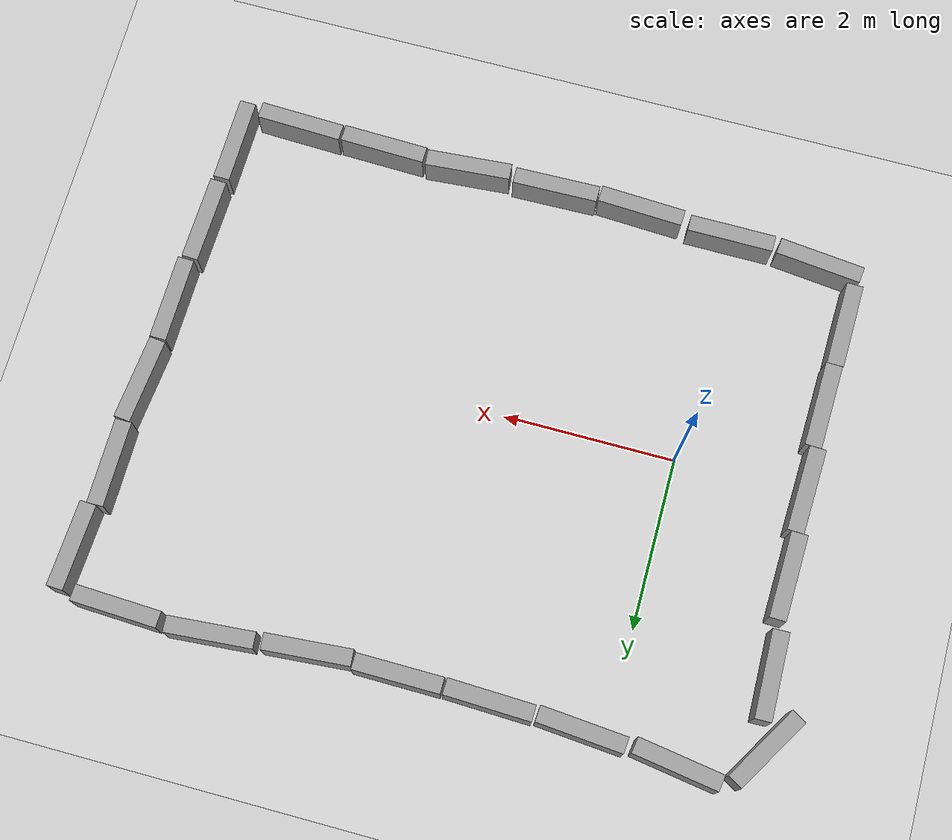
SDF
<sdf version="1.6">
 <world name="default">
  <light name="sun" type="directional">
   <pose>0 0 10 0 -0 0</pose>
   <diffuse>0.8 0.8 0.8 1</diffuse>
   <specular>0.2 0.2 0.2 1</specular>
   <attenuation>
    <range>1000</range>
    <constant>0.9</constant>
    <linear>0.01</linear>
    <quadratic>0.001</quadratic>
   </attenuation>
   <direction>-0.5 0.1 -0.9</direction>
  </light>
  <model name="ground_plane">
   <static>1</static>
   <link name="link">
    <collision name="collision">
     <geometry><plane><normal>0 0 1</normal><size>100 100</size></plane></geometry>
     <surface>
      <contact><collide_bitmask>65535</collide_bitmask></contact>
      <friction><ode><mu>100</mu><mu2>50</mu2></ode></friction>
     </surface>
    </collision>
    <visual name="visual">
     <cast_shadows>0</cast_shadows>
     <geometry><plane><normal>0 0 1</normal><size>100 100</size></plane></geometry>
     <material>
      <script><uri>file://media/materials/scripts/gazebo.material</uri><name>Gazebo/Grey</name></script>
     </material>
    </visual>
   </link>
  </model>
  <gravity>0 0 -9.8</gravity>
  <magnetic_field>6e-06 2.3e-05 -4.2e-05</magnetic_field>
  <atmosphere type="adiabatic"/>
  <physics name="default_physics" default="0" type="ode">
   <max_step_size>0.001</max_step_size>
   <real_time_factor>1</real_time_factor>
   <real_time_update_rate>1000</real_time_update_rate>
  </physics>
  <scene><ambient>0.4 0.4 0.4 1</ambient><background>0.7 0.7 0.7 1</background><shadows>1</shadows></scene>
  <spherical_coordinates>
   <surface_model>EARTH_WGS84</surface_model>
   <latitude_deg>0</latitude_deg>
   <longitude_deg>0</longitude_deg>
   <elevation>0</elevation>
   <heading_deg>0</heading_deg>
  </spherical_coordinates>
  <model name="unit_box_0">
   <link name="link_1">
    <inertial>
     <mass>0.0817798</mass>
     <inertia>
      <ixx>0.0080556</ixx>
      <ixy>0</ixy>
      <ixz>0</ixz>
      <iyy>0.00149444</iyy>
      <iyz>0</iyz>
      <izz>0.00706084</izz>
     </inertia>
    </inertial>
    <pose>0.238272 0.012855 -0 0 -0 0</pose>
    <visual name="visual">
     <geometry><box><size>0.191468 0.999708 0.427349</size></box></geometry>
     <material>
      <lighting>1</lighting>
      <script><uri>file://media/materials/scripts/gazebo.material</uri><name>Gazebo/Grey</name></script>
      <shader type="pixel"/>
     </material>
    </visual>
    <collision name="collision">
     <geometry><box><size>0.191468 0.999708 0.427349</size></box></geometry>
     <surface>
      <friction>
       <ode><mu>1</mu><mu2>1</mu2><fdir1>0 0 0</fdir1><slip1>0</slip1><slip2>0</slip2></ode>
       <torsional>
        <coefficient>1</coefficient>
        <patch_radius>0</patch_radius>
        <surface_radius>0</surface_radius>
        <use_patch_radius>1</use_patch_radius>
        <ode><slip>0</slip></ode>
       </torsional>
      </friction>
      <bounce><restitution_coefficient>0</restitution_coefficient><threshold>1e+06</threshold></bounce>
      <contact>
       <collide_without_contact>0</collide_without_contact>
       <collide_without_contact_bitmask>1</collide_without_contact_bitmask>
       <collide_bitmask>1</collide_bitmask>
       <ode>
        <soft_cfm>0</soft_cfm>
        <soft_erp>0.2</soft_erp>
        <kp>1e+13</kp>
        <kd>1</kd>
        <max_vel>0.01</max_vel>
        <min_depth>0</min_depth>
       </ode>
       <bullet>
        <split_impulse>1</split_impulse>
        <split_impulse_penetration_threshold>-0.01</split_impulse_penetration_threshold>
        <soft_cfm>0</soft_cfm>
        <soft_erp>0.2</soft_erp>
        <kp>1e+13</kp>
        <kd>1</kd>
       </bullet>
      </contact>
     </surface>
    </collision>
   </link>
   <static>0</static>
   <pose>-1.7108 0.045646 0.213673 -0 -5e-06 -0.04199</pose>
  </model>
  <model name="unit_box_1">
   <link name="link_1">
    <inertial>
     <mass>0.0817798</mass>
     <inertia>
      <ixx>0.0080556</ixx>
      <ixy>0</ixy>
      <ixz>0</ixz>
      <iyy>0.00149444</iyy>
      <iyz>0</iyz>
      <izz>0.00706084</izz>
     </inertia>
    </inertial>
    <pose>0.238272 0.012855 -0 0 -0 0</pose>
    <visual name="visual">
     <geometry><box><size>0.191468 0.999708 0.427349</size></box></geometry>
     <material>
      <lighting>1</lighting>
      <script><uri>file://media/materials/scripts/gazebo.material</uri><name>Gazebo/Grey</name></script>
      <shader type="pixel"/>
     </material>
    </visual>
    <collision name="collision">
     <geometry><box><size>0.191468 0.999708 0.427349</size></box></geometry>
     <surface>
      <friction>
       <ode><mu>1</mu><mu2>1</mu2><fdir1>0 0 0</fdir1><slip1>0</slip1><slip2>0</slip2></ode>
       <torsional>
        <coefficient>1</coefficient>
        <patch_radius>0</patch_radius>
        <surface_radius>0</surface_radius>
        <use_patch_radius>1</use_patch_radius>
        <ode><slip>0</slip></ode>
       </torsional>
      </friction>
      <bounce><restitution_coefficient>0</restitution_coefficient><threshold>1e+06</threshold></bounce>
      <contact>
       <collide_without_contact>0</collide_without_contact>
       <collide_without_contact_bitmask>1</collide_without_contact_bitmask>
       <collide_bitmask>1</collide_bitmask>
       <ode>
        <soft_cfm>0</soft_cfm>
        <soft_erp>0.2</soft_erp>
        <kp>1e+13</kp>
        <kd>1</kd>
        <max_vel>0.01</max_vel>
        <min_depth>0</min_depth>
       </ode>
       <bullet>
        <split_impulse>1</split_impulse>
        <split_impulse_penetration_threshold>-0.01</split_impulse_penetration_threshold>
        <soft_cfm>0</soft_cfm>
        <soft_erp>0.2</soft_erp>
        <kp>1e+13</kp>
        <kd>1</kd>
       </bullet>
      </contact>
     </surface>
    </collision>
   </link>
   <static>0</static>
   <pose>-1.72328 1.04488 0.213676 -0 7e-06 -0.031677</pose>
  </model>
  <model name="unit_box">
   <link name="link_1">
    <inertial>
     <mass>0.0817798</mass>
     <inertia>
      <ixx>0.0080556</ixx>
      <ixy>0</ixy>
      <ixz>0</ixz>
      <iyy>0.00149444</iyy>
      <iyz>0</iyz>
      <izz>0.00706084</izz>
     </inertia>
    </inertial>
    <pose>0.238272 0.012855 -0 0 -0 0</pose>
    <visual name="visual">
     <geometry><box><size>0.191468 0.999708 0.427349</size></box></geometry>
     <material>
      <lighting>1</lighting>
      <script><uri>file://media/materials/scripts/gazebo.material</uri><name>Gazebo/Grey</name></script>
      <shader type="pixel"/>
     </material>
    </visual>
    <collision name="collision">
     <geometry><box><size>0.191468 0.999708 0.427349</size></box></geometry>
     <surface>
      <friction>
       <ode><mu>1</mu><mu2>1</mu2><fdir1>0 0 0</fdir1><slip1>0</slip1><slip2>0</slip2></ode>
       <torsional>
        <coefficient>1</coefficient>
        <patch_radius>0</patch_radius>
        <surface_radius>0</surface_radius>
        <use_patch_radius>1</use_patch_radius>
        <ode><slip>0</slip></ode>
       </torsional>
      </friction>
      <bounce><restitution_coefficient>0</restitution_coefficient><threshold>1e+06</threshold></bounce>
      <contact>
       <collide_without_contact>0</collide_without_contact>
       <collide_without_contact_bitmask>1</collide_without_contact_bitmask>
       <collide_bitmask>1</collide_bitmask>
       <ode>
        <soft_cfm>0</soft_cfm>
        <soft_erp>0.2</soft_erp>
        <kp>1e+13</kp>
        <kd>1</kd>
        <max_vel>0.01</max_vel>
        <min_depth>0</min_depth>
       </ode>
       <bullet>
        <split_impulse>1</split_impulse>
        <split_impulse_penetration_threshold>-0.01</split_impulse_penetration_threshold>
        <soft_cfm>0</soft_cfm>
        <soft_erp>0.2</soft_erp>
        <kp>1e+13</kp>
        <kd>1</kd>
       </bullet>
      </contact>
     </surface>
    </collision>
   </link>
   <static>0</static>
   <pose>-1.69054 -0.958756 0.213675 0 5e-06 -0.031552</pose>
  </model>
  <model name="unit_box_2">
   <link name="link_1">
    <inertial>
     <mass>0.0817798</mass>
     <inertia>
      <ixx>0.0080556</ixx>
      <ixy>0</ixy>
      <ixz>0</ixz>
      <iyy>0.00149444</iyy>
      <iyz>0</iyz>
      <izz>0.00706084</izz>
     </inertia>
    </inertial>
    <pose>0.238272 0.012855 -0 0 -0 0</pose>
    <visual name="visual">
     <geometry><box><size>0.191468 0.999708 0.427349</size></box></geometry>
     <material>
      <lighting>1</lighting>
      <script><uri>file://media/materials/scripts/gazebo.material</uri><name>Gazebo/Grey</name></script>
      <shader type="pixel"/>
     </material>
    </visual>
    <collision name="collision">
     <geometry><box><size>0.191468 0.999708 0.427349</size></box></geometry>
     <surface>
      <friction>
       <ode><mu>1</mu><mu2>1</mu2><fdir1>0 0 0</fdir1><slip1>0</slip1><slip2>0</slip2></ode>
       <torsional>
        <coefficient>1</coefficient>
        <patch_radius>0</patch_radius>
        <surface_radius>0</surface_radius>
        <use_patch_radius>1</use_patch_radius>
        <ode><slip>0</slip></ode>
       </torsional>
      </friction>
      <bounce><restitution_coefficient>0</restitution_coefficient><threshold>1e+06</threshold></bounce>
      <contact>
       <collide_without_contact>0</collide_without_contact>
       <collide_without_contact_bitmask>1</collide_without_contact_bitmask>
       <collide_bitmask>1</collide_bitmask>
       <ode>
        <soft_cfm>0</soft_cfm>
        <soft_erp>0.2</soft_erp>
        <kp>1e+13</kp>
        <kd>1</kd>
        <max_vel>0.01</max_vel>
        <min_depth>0</min_depth>
       </ode>
       <bullet>
        <split_impulse>1</split_impulse>
        <split_impulse_penetration_threshold>-0.01</split_impulse_penetration_threshold>
        <soft_cfm>0</soft_cfm>
        <soft_erp>0.2</soft_erp>
        <kp>1e+13</kp>
        <kd>1</kd>
       </bullet>
      </contact>
     </surface>
    </collision>
   </link>
   <static>0</static>
   <pose>-1.72757 -1.96004 0.213675 0 5e-06 -0.025123</pose>
  </model>
  <model name="unit_box_3">
   <link name="link_1">
    <inertial>
     <mass>0.0817798</mass>
     <inertia>
      <ixx>0.0080556</ixx>
      <ixy>0</ixy>
      <ixz>0</ixz>
      <iyy>0.00149444</iyy>
      <iyz>0</iyz>
      <izz>0.00706084</izz>
     </inertia>
    </inertial>
    <pose>0.238272 0.012855 -0 0 -0 0</pose>
    <visual name="visual">
     <geometry><box><size>0.191468 0.999708 0.427349</size></box></geometry>
     <material>
      <lighting>1</lighting>
      <script><uri>file://media/materials/scripts/gazebo.material</uri><name>Gazebo/Grey</name></script>
      <shader type="pixel"/>
     </material>
    </visual>
    <collision name="collision">
     <geometry><box><size>0.191468 0.999708 0.427349</size></box></geometry>
     <surface>
      <friction>
       <ode><mu>1</mu><mu2>1</mu2><fdir1>0 0 0</fdir1><slip1>0</slip1><slip2>0</slip2></ode>
       <torsional>
        <coefficient>1</coefficient>
        <patch_radius>0</patch_radius>
        <surface_radius>0</surface_radius>
        <use_patch_radius>1</use_patch_radius>
        <ode><slip>0</slip></ode>
       </torsional>
      </friction>
      <bounce><restitution_coefficient>0</restitution_coefficient><threshold>1e+06</threshold></bounce>
      <contact>
       <collide_without_contact>0</collide_without_contact>
       <collide_without_contact_bitmask>1</collide_without_contact_bitmask>
       <collide_bitmask>1</collide_bitmask>
       <ode>
        <soft_cfm>0</soft_cfm>
        <soft_erp>0.2</soft_erp>
        <kp>1e+13</kp>
        <kd>1</kd>
        <max_vel>0.01</max_vel>
        <min_depth>0</min_depth>
       </ode>
       <bullet>
        <split_impulse>1</split_impulse>
        <split_impulse_penetration_threshold>-0.01</split_impulse_penetration_threshold>
        <soft_cfm>0</soft_cfm>
        <soft_erp>0.2</soft_erp>
        <kp>1e+13</kp>
        <kd>1</kd>
       </bullet>
      </contact>
     </surface>
    </collision>
   </link>
   <static>0</static>
   <pose>-1.04222 -2.40342 0.213673 0 -5e-06 -1.68005</pose>
  </model>
  <model name="unit_box_4">
   <link name="link_1">
    <inertial>
     <mass>0.0817798</mass>
     <inertia>
      <ixx>0.0080556</ixx>
      <ixy>0</ixy>
      <ixz>0</ixz>
      <iyy>0.00149444</iyy>
      <iyz>0</iyz>
      <izz>0.00706084</izz>
     </inertia>
    </inertial>
    <pose>0.238272 0.012855 -0 0 -0 0</pose>
    <visual name="visual">
     <geometry><box><size>0.191468 0.999708 0.427349</size></box></geometry>
     <material>
      <lighting>1</lighting>
      <script><uri>file://media/materials/scripts/gazebo.material</uri><name>Gazebo/Grey</name></script>
      <shader type="pixel"/>
     </material>
    </visual>
    <collision name="collision">
     <geometry><box><size>0.191468 0.999708 0.427349</size></box></geometry>
     <surface>
      <friction>
       <ode><mu>1</mu><mu2>1</mu2><fdir1>0 0 0</fdir1><slip1>0</slip1><slip2>0</slip2></ode>
       <torsional>
        <coefficient>1</coefficient>
        <patch_radius>0</patch_radius>
        <surface_radius>0</surface_radius>
        <use_patch_radius>1</use_patch_radius>
        <ode><slip>0</slip></ode>
       </torsional>
      </friction>
      <bounce><restitution_coefficient>0</restitution_coefficient><threshold>1e+06</threshold></bounce>
      <contact>
       <collide_without_contact>0</collide_without_contact>
       <collide_without_contact_bitmask>1</collide_without_contact_bitmask>
       <collide_bitmask>1</collide_bitmask>
       <ode>
        <soft_cfm>0</soft_cfm>
        <soft_erp>0.2</soft_erp>
        <kp>1e+13</kp>
        <kd>1</kd>
        <max_vel>0.01</max_vel>
        <min_depth>0</min_depth>
       </ode>
       <bullet>
        <split_impulse>1</split_impulse>
        <split_impulse_penetration_threshold>-0.01</split_impulse_penetration_threshold>
        <soft_cfm>0</soft_cfm>
        <soft_erp>0.2</soft_erp>
        <kp>1e+13</kp>
        <kd>1</kd>
       </bullet>
      </contact>
     </surface>
    </collision>
   </link>
   <static>0</static>
   <pose>-0.008669 -2.46592 0.213675 0 5e-06 -1.57501</pose>
  </model>
  <model name="unit_box_5">
   <link name="link_1">
    <inertial>
     <mass>0.0817798</mass>
     <inertia>
      <ixx>0.0080556</ixx>
      <ixy>0</ixy>
      <ixz>0</ixz>
      <iyy>0.00149444</iyy>
      <iyz>0</iyz>
      <izz>0.00706084</izz>
     </inertia>
    </inertial>
    <pose>0.238272 0.012855 -0 0 -0 0</pose>
    <visual name="visual">
     <geometry><box><size>0.191468 0.999708 0.427349</size></box></geometry>
     <material>
      <lighting>1</lighting>
      <script><uri>file://media/materials/scripts/gazebo.material</uri><name>Gazebo/Grey</name></script>
      <shader type="pixel"/>
     </material>
    </visual>
    <collision name="collision">
     <geometry><box><size>0.191468 0.999708 0.427349</size></box></geometry>
     <surface>
      <friction>
       <ode><mu>1</mu><mu2>1</mu2><fdir1>0 0 0</fdir1><slip1>0</slip1><slip2>0</slip2></ode>
       <torsional>
        <coefficient>1</coefficient>
        <patch_radius>0</patch_radius>
        <surface_radius>0</surface_radius>
        <use_patch_radius>1</use_patch_radius>
        <ode><slip>0</slip></ode>
       </torsional>
      </friction>
      <bounce><restitution_coefficient>0</restitution_coefficient><threshold>1e+06</threshold></bounce>
      <contact>
       <collide_without_contact>0</collide_without_contact>
       <collide_without_contact_bitmask>1</collide_without_contact_bitmask>
       <collide_bitmask>1</collide_bitmask>
       <ode>
        <soft_cfm>0</soft_cfm>
        <soft_erp>0.2</soft_erp>
        <kp>1e+13</kp>
        <kd>1</kd>
        <max_vel>0.01</max_vel>
        <min_depth>0</min_depth>
       </ode>
       <bullet>
        <split_impulse>1</split_impulse>
        <split_impulse_penetration_threshold>-0.01</split_impulse_penetration_threshold>
        <soft_cfm>0</soft_cfm>
        <soft_erp>0.2</soft_erp>
        <kp>1e+13</kp>
        <kd>1</kd>
       </bullet>
      </contact>
     </surface>
    </collision>
   </link>
   <static>0</static>
   <pose>1.08682 -2.52686 0.213675 0 5e-06 -1.6228</pose>
  </model>
  <model name="unit_box_6">
   <link name="link_1">
    <inertial>
     <mass>0.0817798</mass>
     <inertia>
      <ixx>0.0080556</ixx>
      <ixy>0</ixy>
      <ixz>0</ixz>
      <iyy>0.00149444</iyy>
      <iyz>0</iyz>
      <izz>0.00706084</izz>
     </inertia>
    </inertial>
    <pose>0.238272 0.012855 -0 0 -0 0</pose>
    <visual name="visual">
     <geometry><box><size>0.191468 0.999708 0.427349</size></box></geometry>
     <material>
      <lighting>1</lighting>
      <script><uri>file://media/materials/scripts/gazebo.material</uri><name>Gazebo/Grey</name></script>
      <shader type="pixel"/>
     </material>
    </visual>
    <collision name="collision">
     <geometry><box><size>0.191468 0.999708 0.427349</size></box></geometry>
     <surface>
      <friction>
       <ode><mu>1</mu><mu2>1</mu2><fdir1>0 0 0</fdir1><slip1>0</slip1><slip2>0</slip2></ode>
       <torsional>
        <coefficient>1</coefficient>
        <patch_radius>0</patch_radius>
        <surface_radius>0</surface_radius>
        <use_patch_radius>1</use_patch_radius>
        <ode><slip>0</slip></ode>
       </torsional>
      </friction>
      <bounce><restitution_coefficient>0</restitution_coefficient><threshold>1e+06</threshold></bounce>
      <contact>
       <collide_without_contact>0</collide_without_contact>
       <collide_without_contact_bitmask>1</collide_without_contact_bitmask>
       <collide_bitmask>1</collide_bitmask>
       <ode>
        <soft_cfm>0</soft_cfm>
        <soft_erp>0.2</soft_erp>
        <kp>1e+13</kp>
        <kd>1</kd>
        <max_vel>0.01</max_vel>
        <min_depth>0</min_depth>
       </ode>
       <bullet>
        <split_impulse>1</split_impulse>
        <split_impulse_penetration_threshold>-0.01</split_impulse_penetration_threshold>
        <soft_cfm>0</soft_cfm>
        <soft_erp>0.2</soft_erp>
        <kp>1e+13</kp>
        <kd>1</kd>
       </bullet>
      </contact>
     </surface>
    </collision>
   </link>
   <static>0</static>
   <pose>2.0913 -2.52566 0.213675 0 5e-06 -1.55293</pose>
  </model>
  <model name="unit_box_7">
   <link name="link_1">
    <inertial>
     <mass>0.0817798</mass>
     <inertia>
      <ixx>0.0080556</ixx>
      <ixy>0</ixy>
      <ixz>0</ixz>
      <iyy>0.00149444</iyy>
      <iyz>0</iyz>
      <izz>0.00706084</izz>
     </inertia>
    </inertial>
    <pose>0.238272 0.012855 -0 0 -0 0</pose>
    <visual name="visual">
     <geometry><box><size>0.191468 0.999708 0.427349</size></box></geometry>
     <material>
      <lighting>1</lighting>
      <script><uri>file://media/materials/scripts/gazebo.material</uri><name>Gazebo/Grey</name></script>
      <shader type="pixel"/>
     </material>
    </visual>
    <collision name="collision">
     <geometry><box><size>0.191468 0.999708 0.427349</size></box></geometry>
     <surface>
      <friction>
       <ode><mu>1</mu><mu2>1</mu2><fdir1>0 0 0</fdir1><slip1>0</slip1><slip2>0</slip2></ode>
       <torsional>
        <coefficient>1</coefficient>
        <patch_radius>0</patch_radius>
        <surface_radius>0</surface_radius>
        <use_patch_radius>1</use_patch_radius>
        <ode><slip>0</slip></ode>
       </torsional>
      </friction>
      <bounce><restitution_coefficient>0</restitution_coefficient><threshold>1e+06</threshold></bounce>
      <contact>
       <collide_without_contact>0</collide_without_contact>
       <collide_without_contact_bitmask>1</collide_without_contact_bitmask>
       <collide_bitmask>1</collide_bitmask>
       <ode>
        <soft_cfm>0</soft_cfm>
        <soft_erp>0.2</soft_erp>
        <kp>1e+13</kp>
        <kd>1</kd>
        <max_vel>0.01</max_vel>
        <min_depth>0</min_depth>
       </ode>
       <bullet>
        <split_impulse>1</split_impulse>
        <split_impulse_penetration_threshold>-0.01</split_impulse_penetration_threshold>
        <soft_cfm>0</soft_cfm>
        <soft_erp>0.2</soft_erp>
        <kp>1e+13</kp>
        <kd>1</kd>
       </bullet>
      </contact>
     </surface>
    </collision>
   </link>
   <static>0</static>
   <pose>3.13169 -2.50582 0.213675 -0 5e-06 -1.49643</pose>
  </model>
  <model name="unit_box_8">
   <link name="link_1">
    <inertial>
     <mass>0.0817798</mass>
     <inertia>
      <ixx>0.0080556</ixx>
      <ixy>0</ixy>
      <ixz>0</ixz>
      <iyy>0.00149444</iyy>
      <iyz>0</iyz>
      <izz>0.00706084</izz>
     </inertia>
    </inertial>
    <pose>0.238272 0.012855 -0 0 -0 0</pose>
    <visual name="visual">
     <geometry><box><size>0.191468 0.999708 0.427349</size></box></geometry>
     <material>
      <lighting>1</lighting>
      <script><uri>file://media/materials/scripts/gazebo.material</uri><name>Gazebo/Grey</name></script>
      <shader type="pixel"/>
     </material>
    </visual>
    <collision name="collision">
     <geometry><box><size>0.191468 0.999708 0.427349</size></box></geometry>
     <surface>
      <friction>
       <ode><mu>1</mu><mu2>1</mu2><fdir1>0 0 0</fdir1><slip1>0</slip1><slip2>0</slip2></ode>
       <torsional>
        <coefficient>1</coefficient>
        <patch_radius>0</patch_radius>
        <surface_radius>0</surface_radius>
        <use_patch_radius>1</use_patch_radius>
        <ode><slip>0</slip></ode>
       </torsional>
      </friction>
      <bounce><restitution_coefficient>0</restitution_coefficient><threshold>1e+06</threshold></bounce>
      <contact>
       <collide_without_contact>0</collide_without_contact>
       <collide_without_contact_bitmask>1</collide_without_contact_bitmask>
       <collide_bitmask>1</collide_bitmask>
       <ode>
        <soft_cfm>0</soft_cfm>
        <soft_erp>0.2</soft_erp>
        <kp>1e+13</kp>
        <kd>1</kd>
        <max_vel>0.01</max_vel>
        <min_depth>0</min_depth>
       </ode>
       <bullet>
        <split_impulse>1</split_impulse>
        <split_impulse_penetration_threshold>-0.01</split_impulse_penetration_threshold>
        <soft_cfm>0</soft_cfm>
        <soft_erp>0.2</soft_erp>
        <kp>1e+13</kp>
        <kd>1</kd>
       </bullet>
      </contact>
     </surface>
    </collision>
   </link>
   <static>0</static>
   <pose>4.18153 -2.49769 0.213675 0 5e-06 -1.59965</pose>
  </model>
  <model name="unit_box_9">
   <link name="link_1">
    <inertial>
     <mass>0.0817798</mass>
     <inertia>
      <ixx>0.0080556</ixx>
      <ixy>0</ixy>
      <ixz>0</ixz>
      <iyy>0.00149444</iyy>
      <iyz>0</iyz>
      <izz>0.00706084</izz>
     </inertia>
    </inertial>
    <pose>0.238272 0.012855 -0 0 -0 0</pose>
    <visual name="visual">
     <geometry><box><size>0.191468 0.999708 0.427349</size></box></geometry>
     <material>
      <lighting>1</lighting>
      <script><uri>file://media/materials/scripts/gazebo.material</uri><name>Gazebo/Grey</name></script>
      <shader type="pixel"/>
     </material>
    </visual>
    <collision name="collision">
     <geometry><box><size>0.191468 0.999708 0.427349</size></box></geometry>
     <surface>
      <friction>
       <ode><mu>1</mu><mu2>1</mu2><fdir1>0 0 0</fdir1><slip1>0</slip1><slip2>0</slip2></ode>
       <torsional>
        <coefficient>1</coefficient>
        <patch_radius>0</patch_radius>
        <surface_radius>0</surface_radius>
        <use_patch_radius>1</use_patch_radius>
        <ode><slip>0</slip></ode>
       </torsional>
      </friction>
      <bounce><restitution_coefficient>0</restitution_coefficient><threshold>1e+06</threshold></bounce>
      <contact>
       <collide_without_contact>0</collide_without_contact>
       <collide_without_contact_bitmask>1</collide_without_contact_bitmask>
       <collide_bitmask>1</collide_bitmask>
       <ode>
        <soft_cfm>0</soft_cfm>
        <soft_erp>0.2</soft_erp>
        <kp>1e+13</kp>
        <kd>1</kd>
        <max_vel>0.01</max_vel>
        <min_depth>0</min_depth>
       </ode>
       <bullet>
        <split_impulse>1</split_impulse>
        <split_impulse_penetration_threshold>-0.01</split_impulse_penetration_threshold>
        <soft_cfm>0</soft_cfm>
        <soft_erp>0.2</soft_erp>
        <kp>1e+13</kp>
        <kd>1</kd>
       </bullet>
      </contact>
     </surface>
    </collision>
   </link>
   <static>0</static>
   <pose>-1.78064 2.13619 0.213676 0 7e-06 0.016766</pose>
  </model>
  <model name="unit_box_10">
   <link name="link_1">
    <inertial>
     <mass>0.0817798</mass>
     <inertia>
      <ixx>0.0080556</ixx>
      <ixy>0</ixy>
      <ixz>0</ixz>
      <iyy>0.00149444</iyy>
      <iyz>0</iyz>
      <izz>0.00706084</izz>
     </inertia>
    </inertial>
    <pose>0.238272 0.012855 -0 0 -0 0</pose>
    <visual name="visual">
     <geometry><box><size>0.191468 0.999708 0.427349</size></box></geometry>
     <material>
      <lighting>1</lighting>
      <script><uri>file://media/materials/scripts/gazebo.material</uri><name>Gazebo/Grey</name></script>
      <shader type="pixel"/>
     </material>
    </visual>
    <collision name="collision">
     <geometry><box><size>0.191468 0.999708 0.427349</size></box></geometry>
     <surface>
      <friction>
       <ode><mu>1</mu><mu2>1</mu2><fdir1>0 0 0</fdir1><slip1>0</slip1><slip2>0</slip2></ode>
       <torsional>
        <coefficient>1</coefficient>
        <patch_radius>0</patch_radius>
        <surface_radius>0</surface_radius>
        <use_patch_radius>1</use_patch_radius>
        <ode><slip>0</slip></ode>
       </torsional>
      </friction>
      <bounce><restitution_coefficient>0</restitution_coefficient><threshold>1e+06</threshold></bounce>
      <contact>
       <collide_without_contact>0</collide_without_contact>
       <collide_without_contact_bitmask>1</collide_without_contact_bitmask>
       <collide_bitmask>1</collide_bitmask>
       <ode>
        <soft_cfm>0</soft_cfm>
        <soft_erp>0.2</soft_erp>
        <kp>1e+13</kp>
        <kd>1</kd>
        <max_vel>0.01</max_vel>
        <min_depth>0</min_depth>
       </ode>
       <bullet>
        <split_impulse>1</split_impulse>
        <split_impulse_penetration_threshold>-0.01</split_impulse_penetration_threshold>
        <soft_cfm>0</soft_cfm>
        <soft_erp>0.2</soft_erp>
        <kp>1e+13</kp>
        <kd>1</kd>
       </bullet>
      </contact>
     </surface>
    </collision>
   </link>
   <static>0</static>
   <pose>5.20908 -2.52241 0.213675 0 5e-06 -1.60769</pose>
  </model>
  <model name="unit_box_11">
   <link name="link_1">
    <inertial>
     <mass>0.0817798</mass>
     <inertia>
      <ixx>0.0080556</ixx>
      <ixy>0</ixy>
      <ixz>0</ixz>
      <iyy>0.00149444</iyy>
      <iyz>0</iyz>
      <izz>0.00706084</izz>
     </inertia>
    </inertial>
    <pose>0.238272 0.012855 -0 0 -0 0</pose>
    <visual name="visual">
     <geometry><box><size>0.191468 0.999708 0.427349</size></box></geometry>
     <material>
      <lighting>1</lighting>
      <script><uri>file://media/materials/scripts/gazebo.material</uri><name>Gazebo/Grey</name></script>
      <shader type="pixel"/>
     </material>
    </visual>
    <collision name="collision">
     <geometry><box><size>0.191468 0.999708 0.427349</size></box></geometry>
     <surface>
      <friction>
       <ode><mu>1</mu><mu2>1</mu2><fdir1>0 0 0</fdir1><slip1>0</slip1><slip2>0</slip2></ode>
       <torsional>
        <coefficient>1</coefficient>
        <patch_radius>0</patch_radius>
        <surface_radius>0</surface_radius>
        <use_patch_radius>1</use_patch_radius>
        <ode><slip>0</slip></ode>
       </torsional>
      </friction>
      <bounce><restitution_coefficient>0</restitution_coefficient><threshold>1e+06</threshold></bounce>
      <contact>
       <collide_without_contact>0</collide_without_contact>
       <collide_without_contact_bitmask>1</collide_without_contact_bitmask>
       <collide_bitmask>1</collide_bitmask>
       <ode>
        <soft_cfm>0</soft_cfm>
        <soft_erp>0.2</soft_erp>
        <kp>1e+13</kp>
        <kd>1</kd>
        <max_vel>0.01</max_vel>
        <min_depth>0</min_depth>
       </ode>
       <bullet>
        <split_impulse>1</split_impulse>
        <split_impulse_penetration_threshold>-0.01</split_impulse_penetration_threshold>
        <soft_cfm>0</soft_cfm>
        <soft_erp>0.2</soft_erp>
        <kp>1e+13</kp>
        <kd>1</kd>
       </bullet>
      </contact>
     </surface>
    </collision>
   </link>
   <static>0</static>
   <pose>5.65173 -2.3336 0.213675 0 5e-06 -0.020599</pose>
  </model>
  <model name="unit_box_12">
   <link name="link_1">
    <inertial>
     <mass>0.0817798</mass>
     <inertia>
      <ixx>0.0080556</ixx>
      <ixy>0</ixy>
      <ixz>0</ixz>
      <iyy>0.00149444</iyy>
      <iyz>0</iyz>
      <izz>0.00706084</izz>
     </inertia>
    </inertial>
    <pose>0.238272 0.012855 -0 0 -0 0</pose>
    <visual name="visual">
     <geometry><box><size>0.191468 0.999708 0.427349</size></box></geometry>
     <material>
      <lighting>1</lighting>
      <script><uri>file://media/materials/scripts/gazebo.material</uri><name>Gazebo/Grey</name></script>
      <shader type="pixel"/>
     </material>
    </visual>
    <collision name="collision">
     <geometry><box><size>0.191468 0.999708 0.427349</size></box></geometry>
     <surface>
      <friction>
       <ode><mu>1</mu><mu2>1</mu2><fdir1>0 0 0</fdir1><slip1>0</slip1><slip2>0</slip2></ode>
       <torsional>
        <coefficient>1</coefficient>
        <patch_radius>0</patch_radius>
        <surface_radius>0</surface_radius>
        <use_patch_radius>1</use_patch_radius>
        <ode><slip>0</slip></ode>
       </torsional>
      </friction>
      <bounce><restitution_coefficient>0</restitution_coefficient><threshold>1e+06</threshold></bounce>
      <contact>
       <collide_without_contact>0</collide_without_contact>
       <collide_without_contact_bitmask>1</collide_without_contact_bitmask>
       <collide_bitmask>1</collide_bitmask>
       <ode>
        <soft_cfm>0</soft_cfm>
        <soft_erp>0.2</soft_erp>
        <kp>1e+13</kp>
        <kd>1</kd>
        <max_vel>0.01</max_vel>
        <min_depth>0</min_depth>
       </ode>
       <bullet>
        <split_impulse>1</split_impulse>
        <split_impulse_penetration_threshold>-0.01</split_impulse_penetration_threshold>
        <soft_cfm>0</soft_cfm>
        <soft_erp>0.2</soft_erp>
        <kp>1e+13</kp>
        <kd>1</kd>
       </bullet>
      </contact>
     </surface>
    </collision>
   </link>
   <static>0</static>
   <pose>5.69991 -1.28622 0.213675 0 5e-06 -0.037146</pose>
  </model>
  <model name="unit_box_13">
   <link name="link_1">
    <inertial>
     <mass>0.0817798</mass>
     <inertia>
      <ixx>0.0080556</ixx>
      <ixy>0</ixy>
      <ixz>0</ixz>
      <iyy>0.00149444</iyy>
      <iyz>0</iyz>
      <izz>0.00706084</izz>
     </inertia>
    </inertial>
    <pose>0.238272 0.012855 -0 0 -0 0</pose>
    <visual name="visual">
     <geometry><box><size>0.191468 0.999708 0.427349</size></box></geometry>
     <material>
      <lighting>1</lighting>
      <script><uri>file://media/materials/scripts/gazebo.material</uri><name>Gazebo/Grey</name></script>
      <shader type="pixel"/>
     </material>
    </visual>
    <collision name="collision">
     <geometry><box><size>0.191468 0.999708 0.427349</size></box></geometry>
     <surface>
      <friction>
       <ode><mu>1</mu><mu2>1</mu2><fdir1>0 0 0</fdir1><slip1>0</slip1><slip2>0</slip2></ode>
       <torsional>
        <coefficient>1</coefficient>
        <patch_radius>0</patch_radius>
        <surface_radius>0</surface_radius>
        <use_patch_radius>1</use_patch_radius>
        <ode><slip>0</slip></ode>
       </torsional>
      </friction>
      <bounce><restitution_coefficient>0</restitution_coefficient><threshold>1e+06</threshold></bounce>
      <contact>
       <collide_without_contact>0</collide_without_contact>
       <collide_without_contact_bitmask>1</collide_without_contact_bitmask>
       <collide_bitmask>1</collide_bitmask>
       <ode>
        <soft_cfm>0</soft_cfm>
        <soft_erp>0.2</soft_erp>
        <kp>1e+13</kp>
        <kd>1</kd>
        <max_vel>0.01</max_vel>
        <min_depth>0</min_depth>
       </ode>
       <bullet>
        <split_impulse>1</split_impulse>
        <split_impulse_penetration_threshold>-0.01</split_impulse_penetration_threshold>
        <soft_cfm>0</soft_cfm>
        <soft_erp>0.2</soft_erp>
        <kp>1e+13</kp>
        <kd>1</kd>
       </bullet>
      </contact>
     </surface>
    </collision>
   </link>
   <static>0</static>
   <pose>5.76366 -0.266211 0.213675 0 5e-06 -0.020304</pose>
  </model>
  <model name="unit_box_14">
   <link name="link_1">
    <inertial>
     <mass>0.0817798</mass>
     <inertia>
      <ixx>0.0080556</ixx>
      <ixy>0</ixy>
      <ixz>0</ixz>
      <iyy>0.00149444</iyy>
      <iyz>0</iyz>
      <izz>0.00706084</izz>
     </inertia>
    </inertial>
    <pose>0.238272 0.012855 -0 0 -0 0</pose>
    <visual name="visual">
     <geometry><box><size>0.191468 0.999708 0.427349</size></box></geometry>
     <material>
      <lighting>1</lighting>
      <script><uri>file://media/materials/scripts/gazebo.material</uri><name>Gazebo/Grey</name></script>
      <shader type="pixel"/>
     </material>
    </visual>
    <collision name="collision">
     <geometry><box><size>0.191468 0.999708 0.427349</size></box></geometry>
     <surface>
      <friction>
       <ode><mu>1</mu><mu2>1</mu2><fdir1>0 0 0</fdir1><slip1>0</slip1><slip2>0</slip2></ode>
       <torsional>
        <coefficient>1</coefficient>
        <patch_radius>0</patch_radius>
        <surface_radius>0</surface_radius>
        <use_patch_radius>1</use_patch_radius>
        <ode><slip>0</slip></ode>
       </torsional>
      </friction>
      <bounce><restitution_coefficient>0</restitution_coefficient><threshold>1e+06</threshold></bounce>
      <contact>
       <collide_without_contact>0</collide_without_contact>
       <collide_without_contact_bitmask>1</collide_without_contact_bitmask>
       <collide_bitmask>1</collide_bitmask>
       <ode>
        <soft_cfm>0</soft_cfm>
        <soft_erp>0.2</soft_erp>
        <kp>1e+13</kp>
        <kd>1</kd>
        <max_vel>0.01</max_vel>
        <min_depth>0</min_depth>
       </ode>
       <bullet>
        <split_impulse>1</split_impulse>
        <split_impulse_penetration_threshold>-0.01</split_impulse_penetration_threshold>
        <soft_cfm>0</soft_cfm>
        <soft_erp>0.2</soft_erp>
        <kp>1e+13</kp>
        <kd>1</kd>
       </bullet>
      </contact>
     </surface>
    </collision>
   </link>
   <static>0</static>
   <pose>5.81944 0.767567 0.213673 0 -5e-06 -0.103355</pose>
  </model>
  <model name="unit_box_15">
   <link name="link_1">
    <inertial>
     <mass>0.0817798</mass>
     <inertia>
      <ixx>0.0080556</ixx>
      <ixy>0</ixy>
      <ixz>0</ixz>
      <iyy>0.00149444</iyy>
      <iyz>0</iyz>
      <izz>0.00706084</izz>
     </inertia>
    </inertial>
    <pose>0.238272 0.012855 -0 0 -0 0</pose>
    <visual name="visual">
     <geometry><box><size>0.191468 0.999708 0.427349</size></box></geometry>
     <material>
      <lighting>1</lighting>
      <script><uri>file://media/materials/scripts/gazebo.material</uri><name>Gazebo/Grey</name></script>
      <shader type="pixel"/>
     </material>
    </visual>
    <collision name="collision">
     <geometry><box><size>0.191468 0.999708 0.427349</size></box></geometry>
     <surface>
      <friction>
       <ode><mu>1</mu><mu2>1</mu2><fdir1>0 0 0</fdir1><slip1>0</slip1><slip2>0</slip2></ode>
       <torsional>
        <coefficient>1</coefficient>
        <patch_radius>0</patch_radius>
        <surface_radius>0</surface_radius>
        <use_patch_radius>1</use_patch_radius>
        <ode><slip>0</slip></ode>
       </torsional>
      </friction>
      <bounce><restitution_coefficient>0</restitution_coefficient><threshold>1e+06</threshold></bounce>
      <contact>
       <collide_without_contact>0</collide_without_contact>
       <collide_without_contact_bitmask>1</collide_without_contact_bitmask>
       <collide_bitmask>1</collide_bitmask>
       <ode>
        <soft_cfm>0</soft_cfm>
        <soft_erp>0.2</soft_erp>
        <kp>1e+13</kp>
        <kd>1</kd>
        <max_vel>0.01</max_vel>
        <min_depth>0</min_depth>
       </ode>
       <bullet>
        <split_impulse>1</split_impulse>
        <split_impulse_penetration_threshold>-0.01</split_impulse_penetration_threshold>
        <soft_cfm>0</soft_cfm>
        <soft_erp>0.2</soft_erp>
        <kp>1e+13</kp>
        <kd>1</kd>
       </bullet>
      </contact>
     </surface>
    </collision>
   </link>
   <static>0</static>
   <pose>5.84661 1.75507 0.213675 0 5e-06 -0.006841</pose>
  </model>
  <model name="unit_box_16">
   <link name="link_1">
    <inertial>
     <mass>0.0817798</mass>
     <inertia>
      <ixx>0.0080556</ixx>
      <ixy>0</ixy>
      <ixz>0</ixz>
      <iyy>0.00149444</iyy>
      <iyz>0</iyz>
      <izz>0.00706084</izz>
     </inertia>
    </inertial>
    <pose>0.238272 0.012855 -0 0 -0 0</pose>
    <visual name="visual">
     <geometry><box><size>0.191468 0.999708 0.427349</size></box></geometry>
     <material>
      <lighting>1</lighting>
      <script><uri>file://media/materials/scripts/gazebo.material</uri><name>Gazebo/Grey</name></script>
      <shader type="pixel"/>
     </material>
    </visual>
    <collision name="collision">
     <geometry><box><size>0.191468 0.999708 0.427349</size></box></geometry>
     <surface>
      <friction>
       <ode><mu>1</mu><mu2>1</mu2><fdir1>0 0 0</fdir1><slip1>0</slip1><slip2>0</slip2></ode>
       <torsional>
        <coefficient>1</coefficient>
        <patch_radius>0</patch_radius>
        <surface_radius>0</surface_radius>
        <use_patch_radius>1</use_patch_radius>
        <ode><slip>0</slip></ode>
       </torsional>
      </friction>
      <bounce><restitution_coefficient>0</restitution_coefficient><threshold>1e+06</threshold></bounce>
      <contact>
       <collide_without_contact>0</collide_without_contact>
       <collide_without_contact_bitmask>1</collide_without_contact_bitmask>
       <collide_bitmask>1</collide_bitmask>
       <ode>
        <soft_cfm>0</soft_cfm>
        <soft_erp>0.2</soft_erp>
        <kp>1e+13</kp>
        <kd>1</kd>
        <max_vel>0.01</max_vel>
        <min_depth>0</min_depth>
       </ode>
       <bullet>
        <split_impulse>1</split_impulse>
        <split_impulse_penetration_threshold>-0.01</split_impulse_penetration_threshold>
        <soft_cfm>0</soft_cfm>
        <soft_erp>0.2</soft_erp>
        <kp>1e+13</kp>
        <kd>1</kd>
       </bullet>
      </contact>
     </surface>
    </collision>
   </link>
   <static>0</static>
   <pose>5.51171 3.51933 0.213675 0 5e-06 -1.61455</pose>
  </model>
  <model name="unit_box_17">
   <link name="link_1">
    <inertial>
     <mass>0.0817798</mass>
     <inertia>
      <ixx>0.0080556</ixx>
      <ixy>0</ixy>
      <ixz>0</ixz>
      <iyy>0.00149444</iyy>
      <iyz>0</iyz>
      <izz>0.00706084</izz>
     </inertia>
    </inertial>
    <pose>0.238272 0.012855 -0 0 -0 0</pose>
    <visual name="visual">
     <geometry><box><size>0.191468 0.999708 0.427349</size></box></geometry>
     <material>
      <lighting>1</lighting>
      <script><uri>file://media/materials/scripts/gazebo.material</uri><name>Gazebo/Grey</name></script>
      <shader type="pixel"/>
     </material>
    </visual>
    <collision name="collision">
     <geometry><box><size>0.191468 0.999708 0.427349</size></box></geometry>
     <surface>
      <friction>
       <ode><mu>1</mu><mu2>1</mu2><fdir1>0 0 0</fdir1><slip1>0</slip1><slip2>0</slip2></ode>
       <torsional>
        <coefficient>1</coefficient>
        <patch_radius>0</patch_radius>
        <surface_radius>0</surface_radius>
        <use_patch_radius>1</use_patch_radius>
        <ode><slip>0</slip></ode>
       </torsional>
      </friction>
      <bounce><restitution_coefficient>0</restitution_coefficient><threshold>1e+06</threshold></bounce>
      <contact>
       <collide_without_contact>0</collide_without_contact>
       <collide_without_contact_bitmask>1</collide_without_contact_bitmask>
       <collide_bitmask>1</collide_bitmask>
       <ode>
        <soft_cfm>0</soft_cfm>
        <soft_erp>0.2</soft_erp>
        <kp>1e+13</kp>
        <kd>1</kd>
        <max_vel>0.01</max_vel>
        <min_depth>0</min_depth>
       </ode>
       <bullet>
        <split_impulse>1</split_impulse>
        <split_impulse_penetration_threshold>-0.01</split_impulse_penetration_threshold>
        <soft_cfm>0</soft_cfm>
        <soft_erp>0.2</soft_erp>
        <kp>1e+13</kp>
        <kd>1</kd>
       </bullet>
      </contact>
     </surface>
    </collision>
   </link>
   <static>0</static>
   <pose>4.41031 3.5235 0.213675 0 5e-06 -1.49288</pose>
  </model>
  <model name="unit_box_18">
   <link name="link_1">
    <inertial>
     <mass>0.0817798</mass>
     <inertia>
      <ixx>0.0080556</ixx>
      <ixy>0</ixy>
      <ixz>0</ixz>
      <iyy>0.00149444</iyy>
      <iyz>0</iyz>
      <izz>0.00706084</izz>
     </inertia>
    </inertial>
    <pose>0.238272 0.012855 -0 0 -0 0</pose>
    <visual name="visual">
     <geometry><box><size>0.191468 0.999708 0.427349</size></box></geometry>
     <material>
      <lighting>1</lighting>
      <script><uri>file://media/materials/scripts/gazebo.material</uri><name>Gazebo/Grey</name></script>
      <shader type="pixel"/>
     </material>
    </visual>
    <collision name="collision">
     <geometry><box><size>0.191468 0.999708 0.427349</size></box></geometry>
     <surface>
      <friction>
       <ode><mu>1</mu><mu2>1</mu2><fdir1>0 0 0</fdir1><slip1>0</slip1><slip2>0</slip2></ode>
       <torsional>
        <coefficient>1</coefficient>
        <patch_radius>0</patch_radius>
        <surface_radius>0</surface_radius>
        <use_patch_radius>1</use_patch_radius>
        <ode><slip>0</slip></ode>
       </torsional>
      </friction>
      <bounce><restitution_coefficient>0</restitution_coefficient><threshold>1e+06</threshold></bounce>
      <contact>
       <collide_without_contact>0</collide_without_contact>
       <collide_without_contact_bitmask>1</collide_without_contact_bitmask>
       <collide_bitmask>1</collide_bitmask>
       <ode>
        <soft_cfm>0</soft_cfm>
        <soft_erp>0.2</soft_erp>
        <kp>1e+13</kp>
        <kd>1</kd>
        <max_vel>0.01</max_vel>
        <min_depth>0</min_depth>
       </ode>
       <bullet>
        <split_impulse>1</split_impulse>
        <split_impulse_penetration_threshold>-0.01</split_impulse_penetration_threshold>
        <soft_cfm>0</soft_cfm>
        <soft_erp>0.2</soft_erp>
        <kp>1e+13</kp>
        <kd>1</kd>
       </bullet>
      </contact>
     </surface>
    </collision>
   </link>
   <static>0</static>
   <pose>3.39838 2.95524 0.213675 0 5e-06 1.6486</pose>
  </model>
  <model name="unit_box_19">
   <link name="link_1">
    <inertial>
     <mass>0.0817798</mass>
     <inertia>
      <ixx>0.0080556</ixx>
      <ixy>0</ixy>
      <ixz>0</ixz>
      <iyy>0.00149444</iyy>
      <iyz>0</iyz>
      <izz>0.00706084</izz>
     </inertia>
    </inertial>
    <pose>0.238272 0.012855 -0 0 -0 0</pose>
    <visual name="visual">
     <geometry><box><size>0.191468 0.999708 0.427349</size></box></geometry>
     <material>
      <lighting>1</lighting>
      <script><uri>file://media/materials/scripts/gazebo.material</uri><name>Gazebo/Grey</name></script>
      <shader type="pixel"/>
     </material>
    </visual>
    <collision name="collision">
     <geometry><box><size>0.191468 0.999708 0.427349</size></box></geometry>
     <surface>
      <friction>
       <ode><mu>1</mu><mu2>1</mu2><fdir1>0 0 0</fdir1><slip1>0</slip1><slip2>0</slip2></ode>
       <torsional>
        <coefficient>1</coefficient>
        <patch_radius>0</patch_radius>
        <surface_radius>0</surface_radius>
        <use_patch_radius>1</use_patch_radius>
        <ode><slip>0</slip></ode>
       </torsional>
      </friction>
      <bounce><restitution_coefficient>0</restitution_coefficient><threshold>1e+06</threshold></bounce>
      <contact>
       <collide_without_contact>0</collide_without_contact>
       <collide_without_contact_bitmask>1</collide_without_contact_bitmask>
       <collide_bitmask>1</collide_bitmask>
       <ode>
        <soft_cfm>0</soft_cfm>
        <soft_erp>0.2</soft_erp>
        <kp>1e+13</kp>
        <kd>1</kd>
        <max_vel>0.01</max_vel>
        <min_depth>0</min_depth>
       </ode>
       <bullet>
        <split_impulse>1</split_impulse>
        <split_impulse_penetration_threshold>-0.01</split_impulse_penetration_threshold>
        <soft_cfm>0</soft_cfm>
        <soft_erp>0.2</soft_erp>
        <kp>1e+13</kp>
        <kd>1</kd>
       </bullet>
      </contact>
     </surface>
    </collision>
   </link>
   <static>0</static>
   <pose>-0.806205 3.09646 0.213675 -0 5e-06 1.41837</pose>
  </model>
  <model name="unit_box_20">
   <link name="link_1">
    <inertial>
     <mass>0.0817798</mass>
     <inertia>
      <ixx>0.0080556</ixx>
      <ixy>0</ixy>
      <ixz>0</ixz>
      <iyy>0.00149444</iyy>
      <iyz>0</iyz>
      <izz>0.00706084</izz>
     </inertia>
    </inertial>
    <pose>0.238272 0.012855 -0 0 -0 0</pose>
    <visual name="visual">
     <geometry><box><size>0.191468 0.999708 0.427349</size></box></geometry>
     <material>
      <lighting>1</lighting>
      <script><uri>file://media/materials/scripts/gazebo.material</uri><name>Gazebo/Grey</name></script>
      <shader type="pixel"/>
     </material>
    </visual>
    <collision name="collision">
     <geometry><box><size>0.191468 0.999708 0.427349</size></box></geometry>
     <surface>
      <friction>
       <ode><mu>1</mu><mu2>1</mu2><fdir1>0 0 0</fdir1><slip1>0</slip1><slip2>0</slip2></ode>
       <torsional>
        <coefficient>1</coefficient>
        <patch_radius>0</patch_radius>
        <surface_radius>0</surface_radius>
        <use_patch_radius>1</use_patch_radius>
        <ode><slip>0</slip></ode>
       </torsional>
      </friction>
      <bounce><restitution_coefficient>0</restitution_coefficient><threshold>1e+06</threshold></bounce>
      <contact>
       <collide_without_contact>0</collide_without_contact>
       <collide_without_contact_bitmask>1</collide_without_contact_bitmask>
       <collide_bitmask>1</collide_bitmask>
       <ode>
        <soft_cfm>0</soft_cfm>
        <soft_erp>0.2</soft_erp>
        <kp>1e+13</kp>
        <kd>1</kd>
        <max_vel>0.01</max_vel>
        <min_depth>0</min_depth>
       </ode>
       <bullet>
        <split_impulse>1</split_impulse>
        <split_impulse_penetration_threshold>-0.01</split_impulse_penetration_threshold>
        <soft_cfm>0</soft_cfm>
        <soft_erp>0.2</soft_erp>
        <kp>1e+13</kp>
        <kd>1</kd>
       </bullet>
      </contact>
     </surface>
    </collision>
   </link>
   <static>0</static>
   <pose>2.34102 3.4231 0.213675 0 5e-06 -1.57848</pose>
  </model>
  <model name="unit_box_21">
   <link name="link_1">
    <inertial>
     <mass>0.0817798</mass>
     <inertia>
      <ixx>0.0080556</ixx>
      <ixy>0</ixy>
      <ixz>0</ixz>
      <iyy>0.00149444</iyy>
      <iyz>0</iyz>
      <izz>0.00706084</izz>
     </inertia>
    </inertial>
    <pose>0.238272 0.012855 -0 0 -0 0</pose>
    <visual name="visual">
     <geometry><box><size>0.191468 0.999708 0.427349</size></box></geometry>
     <material>
      <lighting>1</lighting>
      <script><uri>file://media/materials/scripts/gazebo.material</uri><name>Gazebo/Grey</name></script>
      <shader type="pixel"/>
     </material>
    </visual>
    <collision name="collision">
     <geometry><box><size>0.191468 0.999708 0.427349</size></box></geometry>
     <surface>
      <friction>
       <ode><mu>1</mu><mu2>1</mu2><fdir1>0 0 0</fdir1><slip1>0</slip1><slip2>0</slip2></ode>
       <torsional>
        <coefficient>1</coefficient>
        <patch_radius>0</patch_radius>
        <surface_radius>0</surface_radius>
        <use_patch_radius>1</use_patch_radius>
        <ode><slip>0</slip></ode>
       </torsional>
      </friction>
      <bounce><restitution_coefficient>0</restitution_coefficient><threshold>1e+06</threshold></bounce>
      <contact>
       <collide_without_contact>0</collide_without_contact>
       <collide_without_contact_bitmask>1</collide_without_contact_bitmask>
       <collide_bitmask>1</collide_bitmask>
       <ode>
        <soft_cfm>0</soft_cfm>
        <soft_erp>0.2</soft_erp>
        <kp>1e+13</kp>
        <kd>1</kd>
        <max_vel>0.01</max_vel>
        <min_depth>0</min_depth>
       </ode>
       <bullet>
        <split_impulse>1</split_impulse>
        <split_impulse_penetration_threshold>-0.01</split_impulse_penetration_threshold>
        <soft_cfm>0</soft_cfm>
        <soft_erp>0.2</soft_erp>
        <kp>1e+13</kp>
        <kd>1</kd>
       </bullet>
      </contact>
     </surface>
    </collision>
   </link>
   <static>0</static>
   <pose>1.3241 3.43995 0.213675 0 5e-06 -1.60427</pose>
  </model>
  <model name="unit_box_22">
   <link name="link_1">
    <inertial>
     <mass>0.0817798</mass>
     <inertia>
      <ixx>0.0080556</ixx>
      <ixy>0</ixy>
      <ixz>0</ixz>
      <iyy>0.00149444</iyy>
      <iyz>0</iyz>
      <izz>0.00706084</izz>
     </inertia>
    </inertial>
    <pose>0.238272 0.012855 -0 0 -0 0</pose>
    <visual name="visual">
     <geometry><box><size>0.191468 0.999708 0.427349</size></box></geometry>
     <material>
      <lighting>1</lighting>
      <script><uri>file://media/materials/scripts/gazebo.material</uri><name>Gazebo/Grey</name></script>
      <shader type="pixel"/>
     </material>
    </visual>
    <collision name="collision">
     <geometry><box><size>0.191468 0.999708 0.427349</size></box></geometry>
     <surface>
      <friction>
       <ode><mu>1</mu><mu2>1</mu2><fdir1>0 0 0</fdir1><slip1>0</slip1><slip2>0</slip2></ode>
       <torsional>
        <coefficient>1</coefficient>
        <patch_radius>0</patch_radius>
        <surface_radius>0</surface_radius>
        <use_patch_radius>1</use_patch_radius>
        <ode><slip>0</slip></ode>
       </torsional>
      </friction>
      <bounce><restitution_coefficient>0</restitution_coefficient><threshold>1e+06</threshold></bounce>
      <contact>
       <collide_without_contact>0</collide_without_contact>
       <collide_without_contact_bitmask>1</collide_without_contact_bitmask>
       <collide_bitmask>1</collide_bitmask>
       <ode>
        <soft_cfm>0</soft_cfm>
        <soft_erp>0.2</soft_erp>
        <kp>1e+13</kp>
        <kd>1</kd>
        <max_vel>0.01</max_vel>
        <min_depth>0</min_depth>
       </ode>
       <bullet>
        <split_impulse>1</split_impulse>
        <split_impulse_penetration_threshold>-0.01</split_impulse_penetration_threshold>
        <soft_cfm>0</soft_cfm>
        <soft_erp>0.2</soft_erp>
        <kp>1e+13</kp>
        <kd>1</kd>
       </bullet>
      </contact>
     </surface>
    </collision>
   </link>
   <static>0</static>
   <pose>0.300879 3.48596 0.213673 0 -5e-06 -1.65416</pose>
  </model>
  <model name="unit_box_23">
   <link name="link_1">
    <inertial>
     <mass>0.0817798</mass>
     <inertia>
      <ixx>0.0080556</ixx>
      <ixy>0</ixy>
      <ixz>0</ixz>
      <iyy>0.00149444</iyy>
      <iyz>0</iyz>
      <izz>0.00706084</izz>
     </inertia>
    </inertial>
    <pose>0.238272 0.012855 -0 0 -0 0</pose>
    <visual name="visual">
     <geometry><box><size>0.191468 0.999708 0.427349</size></box></geometry>
     <material>
      <lighting>1</lighting>
      <script><uri>file://media/materials/scripts/gazebo.material</uri><name>Gazebo/Grey</name></script>
      <shader type="pixel"/>
     </material>
    </visual>
    <collision name="collision">
     <geometry><box><size>0.191468 0.999708 0.427349</size></box></geometry>
     <surface>
      <friction>
       <ode><mu>1</mu><mu2>1</mu2><fdir1>0 0 0</fdir1><slip1>0</slip1><slip2>0</slip2></ode>
       <torsional>
        <coefficient>1</coefficient>
        <patch_radius>0</patch_radius>
        <surface_radius>0</surface_radius>
        <use_patch_radius>1</use_patch_radius>
        <ode><slip>0</slip></ode>
       </torsional>
      </friction>
      <bounce><restitution_coefficient>0</restitution_coefficient><threshold>1e+06</threshold></bounce>
      <contact>
       <collide_without_contact>0</collide_without_contact>
       <collide_without_contact_bitmask>1</collide_without_contact_bitmask>
       <collide_bitmask>1</collide_bitmask>
       <ode>
        <soft_cfm>0</soft_cfm>
        <soft_erp>0.2</soft_erp>
        <kp>1e+13</kp>
        <kd>1</kd>
        <max_vel>0.01</max_vel>
        <min_depth>0</min_depth>
       </ode>
       <bullet>
        <split_impulse>1</split_impulse>
        <split_impulse_penetration_threshold>-0.01</split_impulse_penetration_threshold>
        <soft_cfm>0</soft_cfm>
        <soft_erp>0.2</soft_erp>
        <kp>1e+13</kp>
        <kd>1</kd>
       </bullet>
      </contact>
     </surface>
    </collision>
   </link>
   <static>0</static>
   <pose>-1.44995 2.82254 0.213673 0 -1.4e-05 2.59879</pose>
  </model>
  <model name="unit_box_24">
   <link name="link_1">
    <inertial>
     <mass>0.0817798</mass>
     <inertia>
      <ixx>0.0080556</ixx>
      <ixy>0</ixy>
      <ixz>0</ixz>
      <iyy>0.00149444</iyy>
      <iyz>0</iyz>
      <izz>0.00706084</izz>
     </inertia>
    </inertial>
    <pose>0.238272 0.012855 -0 0 -0 0</pose>
    <visual name="visual">
     <geometry><box><size>0.191468 0.999708 0.427349</size></box></geometry>
     <material>
      <lighting>1</lighting>
      <script><uri>file://media/materials/scripts/gazebo.material</uri><name>Gazebo/Grey</name></script>
      <shader type="pixel"/>
     </material>
    </visual>
    <collision name="collision">
     <geometry><box><size>0.191468 0.999708 0.427349</size></box></geometry>
     <surface>
      <friction>
       <ode><mu>1</mu><mu2>1</mu2><fdir1>0 0 0</fdir1><slip1>0</slip1><slip2>0</slip2></ode>
       <torsional>
        <coefficient>1</coefficient>
        <patch_radius>0</patch_radius>
        <surface_radius>0</surface_radius>
        <use_patch_radius>1</use_patch_radius>
        <ode><slip>0</slip></ode>
       </torsional>
      </friction>
      <bounce><restitution_coefficient>0</restitution_coefficient><threshold>1e+06</threshold></bounce>
      <contact>
       <collide_without_contact>0</collide_without_contact>
       <collide_without_contact_bitmask>1</collide_without_contact_bitmask>
       <collide_bitmask>1</collide_bitmask>
       <ode>
        <soft_cfm>0</soft_cfm>
        <soft_erp>0.2</soft_erp>
        <kp>1e+13</kp>
        <kd>1</kd>
        <max_vel>0.01</max_vel>
        <min_depth>0</min_depth>
       </ode>
       <bullet>
        <split_impulse>1</split_impulse>
        <split_impulse_penetration_threshold>-0.01</split_impulse_penetration_threshold>
        <soft_cfm>0</soft_cfm>
        <soft_erp>0.2</soft_erp>
        <kp>1e+13</kp>
        <kd>1</kd>
       </bullet>
      </contact>
     </surface>
    </collision>
   </link>
   <static>0</static>
   <pose>5.95243 2.76624 0.213675 -0 5e-06 -0.055948</pose>
  </model>
 </world>
</sdf>
